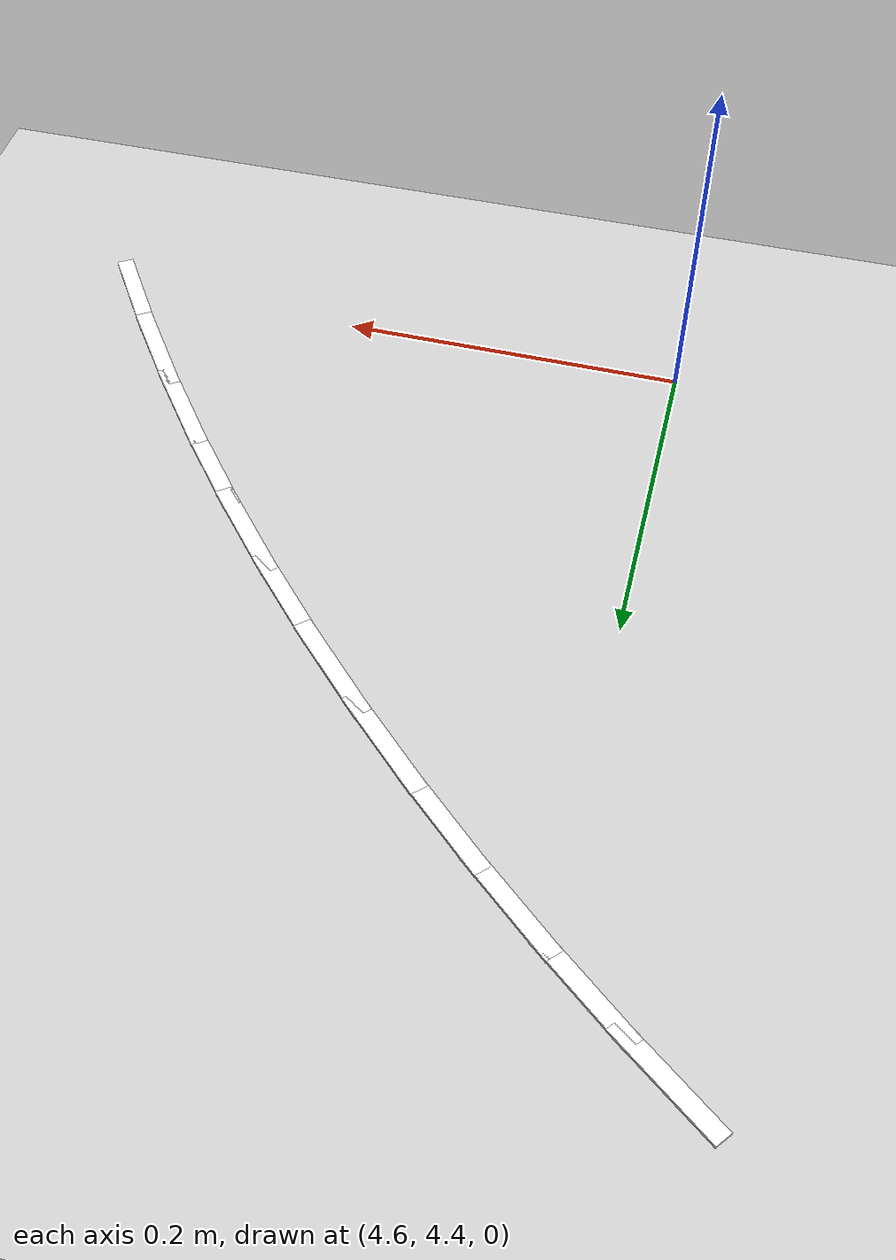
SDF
<sdf version="1.7">
 <world name="default">
  <model name="ground_plane">
   <static>1</static>
   <link name="link">
    <collision name="collision">
     <geometry><plane><normal>0 0 1</normal><size>100 100</size></plane></geometry>
     <surface>
      <contact><collide_bitmask>65535</collide_bitmask></contact>
      <friction><ode><mu>100</mu><mu2>50</mu2></ode></friction>
     </surface>
    </collision>
    <visual name="visual">
     <cast_shadows>0</cast_shadows>
     <geometry><plane><normal>0 0 1</normal><size>100 100</size></plane></geometry>
     <material>
      <script><uri>file://media/materials/scripts/gazebo.material</uri><name>Gazebo/Grey</name></script>
     </material>
    </visual>
   </link>
  </model>
  <model name="lane_line_right_167">
   <static>1</static>
   <link name="link">
    <pose>0 0 -0.004 0 -0 0</pose>
    <visual name="visual">
     <geometry><box><size>0.0681 0.01 0.01</size></box></geometry>
     <material><ambient>1 1 1 1</ambient><diffuse>1 1 1 1</diffuse></material>
    </visual>
    <collision name="collision"><geometry><box><size>0.0681 0.01 0.01</size></box></geometry></collision>
   </link>
   <pose>4.93927 4.40435 0 0 -0 2.1318</pose>
  </model>
  <model name="lane_line_right_168">
   <static>1</static>
   <link name="link">
    <pose>0 0 -0.004 0 -0 0</pose>
    <visual name="visual">
     <geometry><box><size>0.0681 0.01 0.01</size></box></geometry>
     <material><ambient>1 1 1 1</ambient><diffuse>1 1 1 1</diffuse></material>
    </visual>
    <collision name="collision"><geometry><box><size>0.0681 0.01 0.01</size></box></geometry></collision>
   </link>
   <pose>4.90954 4.45002 0 0 -0 2.16385</pose>
  </model>
  <model name="lane_line_right_169">
   <static>1</static>
   <link name="link">
    <pose>0 0 -0.004 0 -0 0</pose>
    <visual name="visual">
     <geometry><box><size>0.0681 0.01 0.01</size></box></geometry>
     <material><ambient>1 1 1 1</ambient><diffuse>1 1 1 1</diffuse></material>
    </visual>
    <collision name="collision"><geometry><box><size>0.0681 0.01 0.01</size></box></geometry></collision>
   </link>
   <pose>4.87837 4.49471 0 0 -0 2.19591</pose>
  </model>
  <model name="lane_line_right_170">
   <static>1</static>
   <link name="link">
    <pose>0 0 -0.004 0 -0 0</pose>
    <visual name="visual">
     <geometry><box><size>0.0681 0.01 0.01</size></box></geometry>
     <material><ambient>1 1 1 1</ambient><diffuse>1 1 1 1</diffuse></material>
    </visual>
    <collision name="collision"><geometry><box><size>0.0681 0.01 0.01</size></box></geometry></collision>
   </link>
   <pose>4.84578 4.53838 0 0 -0 2.22797</pose>
  </model>
  <model name="lane_line_right_171">
   <static>1</static>
   <link name="link">
    <pose>0 0 -0.004 0 -0 0</pose>
    <visual name="visual">
     <geometry><box><size>0.0681 0.01 0.01</size></box></geometry>
     <material><ambient>1 1 1 1</ambient><diffuse>1 1 1 1</diffuse></material>
    </visual>
    <collision name="collision"><geometry><box><size>0.0681 0.01 0.01</size></box></geometry></collision>
   </link>
   <pose>4.81181 4.58098 0 0 -0 2.26002</pose>
  </model>
  <model name="lane_line_right_172">
   <static>1</static>
   <link name="link">
    <pose>0 0 -0.004 0 -0 0</pose>
    <visual name="visual">
     <geometry><box><size>0.0681 0.01 0.01</size></box></geometry>
     <material><ambient>1 1 1 1</ambient><diffuse>1 1 1 1</diffuse></material>
    </visual>
    <collision name="collision"><geometry><box><size>0.0681 0.01 0.01</size></box></geometry></collision>
   </link>
   <pose>4.77648 4.62247 0 0 -0 2.29208</pose>
  </model>
  <model name="lane_line_right_173">
   <static>1</static>
   <link name="link">
    <pose>0 0 -0.004 0 -0 0</pose>
    <visual name="visual">
     <geometry><box><size>0.0681 0.01 0.01</size></box></geometry>
     <material><ambient>1 1 1 1</ambient><diffuse>1 1 1 1</diffuse></material>
    </visual>
    <collision name="collision"><geometry><box><size>0.0681 0.01 0.01</size></box></geometry></collision>
   </link>
   <pose>4.73985 4.6628 0 0 -0 2.32414</pose>
  </model>
  <model name="lane_line_right_174">
   <static>1</static>
   <link name="link">
    <pose>0 0 -0.004 0 -0 0</pose>
    <visual name="visual">
     <geometry><box><size>0.0681 0.01 0.01</size></box></geometry>
     <material><ambient>1 1 1 1</ambient><diffuse>1 1 1 1</diffuse></material>
    </visual>
    <collision name="collision"><geometry><box><size>0.0681 0.01 0.01</size></box></geometry></collision>
   </link>
   <pose>4.70195 4.70195 0 0 -0 2.35619</pose>
  </model>
  <model name="lane_line_right_175">
   <static>1</static>
   <link name="link">
    <pose>0 0 -0.004 0 -0 0</pose>
    <visual name="visual">
     <geometry><box><size>0.0681 0.01 0.01</size></box></geometry>
     <material><ambient>1 1 1 1</ambient><diffuse>1 1 1 1</diffuse></material>
    </visual>
    <collision name="collision"><geometry><box><size>0.0681 0.01 0.01</size></box></geometry></collision>
   </link>
   <pose>4.6628 4.73985 0 0 -0 2.38825</pose>
  </model>
  <model name="lane_line_right_176">
   <static>1</static>
   <link name="link">
    <pose>0 0 -0.004 0 -0 0</pose>
    <visual name="visual">
     <geometry><box><size>0.0681 0.01 0.01</size></box></geometry>
     <material><ambient>1 1 1 1</ambient><diffuse>1 1 1 1</diffuse></material>
    </visual>
    <collision name="collision"><geometry><box><size>0.0681 0.01 0.01</size></box></geometry></collision>
   </link>
   <pose>4.62247 4.77648 0 0 -0 2.42031</pose>
  </model>
  <model name="lane_line_right_177">
   <static>1</static>
   <link name="link">
    <pose>0 0 -0.004 0 -0 0</pose>
    <visual name="visual">
     <geometry><box><size>0.0681 0.01 0.01</size></box></geometry>
     <material><ambient>1 1 1 1</ambient><diffuse>1 1 1 1</diffuse></material>
    </visual>
    <collision name="collision"><geometry><box><size>0.0681 0.01 0.01</size></box></geometry></collision>
   </link>
   <pose>4.58098 4.81181 0 0 -0 2.45237</pose>
  </model>
  <model name="lane_line_right_178">
   <static>1</static>
   <link name="link">
    <pose>0 0 -0.004 0 -0 0</pose>
    <visual name="visual">
     <geometry><box><size>0.0681 0.01 0.01</size></box></geometry>
     <material><ambient>1 1 1 1</ambient><diffuse>1 1 1 1</diffuse></material>
    </visual>
    <collision name="collision"><geometry><box><size>0.0681 0.01 0.01</size></box></geometry></collision>
   </link>
   <pose>4.53838 4.84578 0 0 -0 2.48442</pose>
  </model>
 </world>
</sdf>
